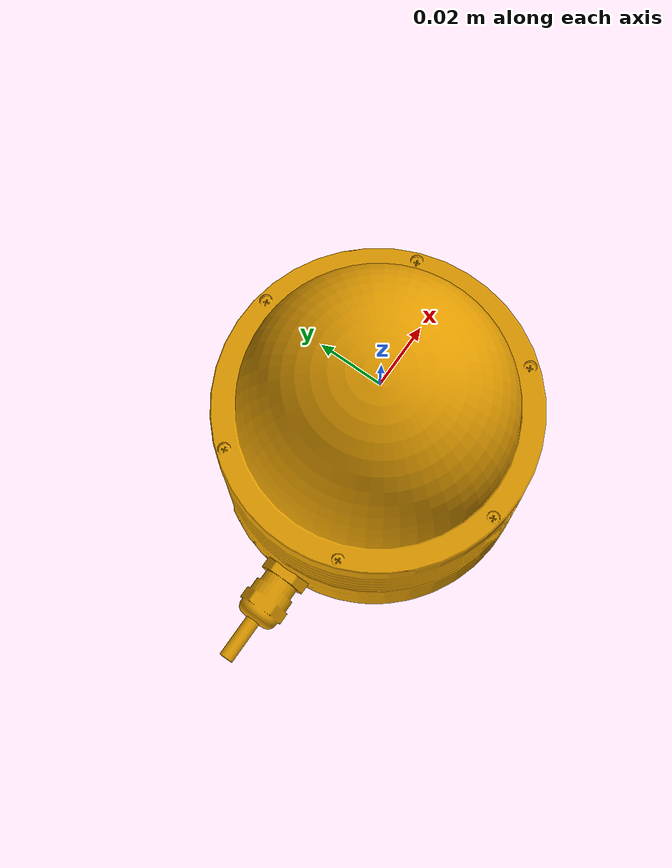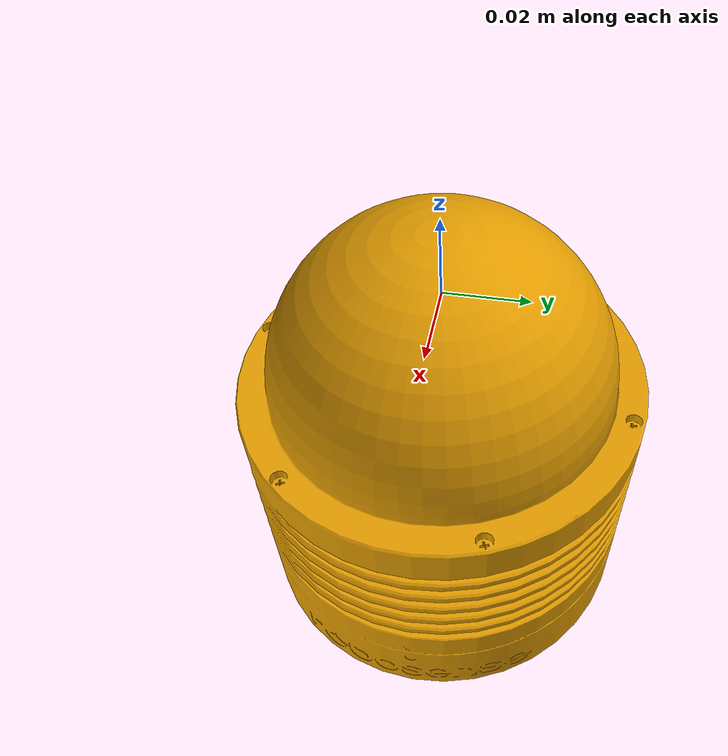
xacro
<?xml version="1.0" ?>
<robot xmlns:xacro="http://www.ros.org/wiki/xacro" name="RS_Bpearl">
    <link name='base_link'>
      <inertial>
        <origin xyz="0 -0.00079641 0.026317" rpy="0 0 0"/>
        <mass value="0.92"/>
        <inertia>
        <inertia ixx="0.0015364" ixy="0" ixz="0"
                  iyy="0.0014894" iyz="0"
                  izz="0.0016331"/>
        </inertia>
      </inertial>
      <collision name='collision'>
        <origin xyz="0 0 0.04" rpy="0 0 0"/>
        <geometry>
          <cylinder radius="0.05" length="0.11"/>
        </geometry>
        <max_contacts>10</max_contacts>
      </collision>
      <visual name='visual'>
        <origin xyz="0 0 0" rpy="0 0 0"/>
        <geometry>
          <mesh filename="model://RS_Bpearl/meshes/RS_Bpearl_frame.STL" />
        </geometry>
      </visual>
    </link>

    <!-- Gazebo requires the velodyne_gazebo_plugins package -->
    <gazebo reference="base_link">
      <sensor name='RS_Bpearl' type='gpu_ray'>
        <visualize>false</visualize>
        <pose frame=''>0 0 0 0 0 0</pose>
        <update_rate>10</update_rate>
        <ray>
          <scan>
            <horizontal>
              <samples>900</samples>
              <resolution>1</resolution>
              <min_angle>-1.5708</min_angle>
              <max_angle>1.5708</max_angle>
            </horizontal>
            <vertical>
              <samples>32</samples>
              <resolution>1</resolution>
              <min_angle>-1.56207</min_angle>
              <max_angle>-0.04036</max_angle>
            </vertical>
          </scan>
          <range>
            <min>0.1</min>
            <max>70</max>
            <resolution>0.001</resolution>
          </range>
          <noise>
            <type>gaussian</type>
            <mean>0</mean>
            <stddev>0</stddev>
          </noise>
        </ray>
        <plugin name='gazebo_ros_laser_controller' filename='libgazebo_ros_velodyne_gpu_laser.so'>
          <topicName>/lidar_points</topicName>
          <robotNamespace>/</robotNamespace>
          <frameName>rs_bpearl</frameName>
          <organize_cloud>false</organize_cloud>
          <min_range>0.1</min_range>
          <max_range>70.0</max_range>
          <gaussianNoise>0.008</gaussianNoise>
        </plugin>
      </sensor>
    </gazebo>
</robot>
